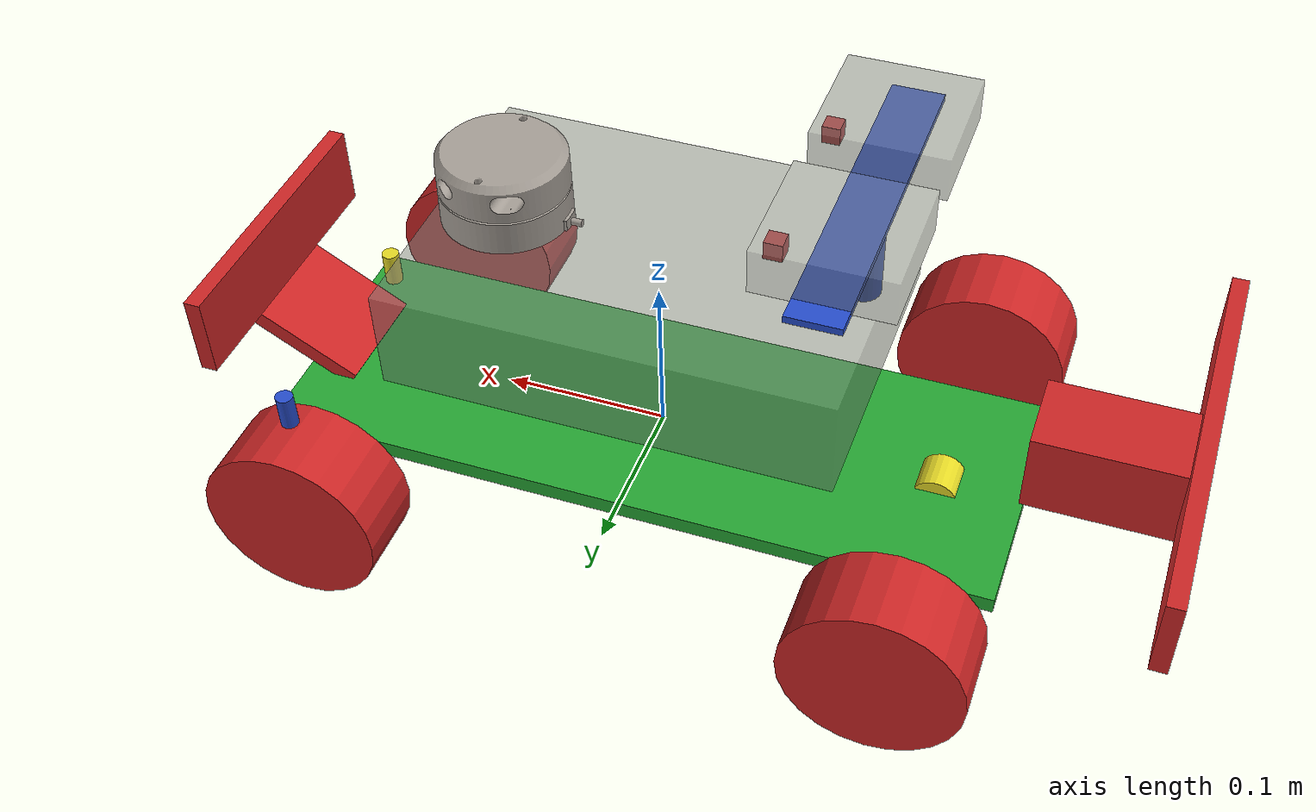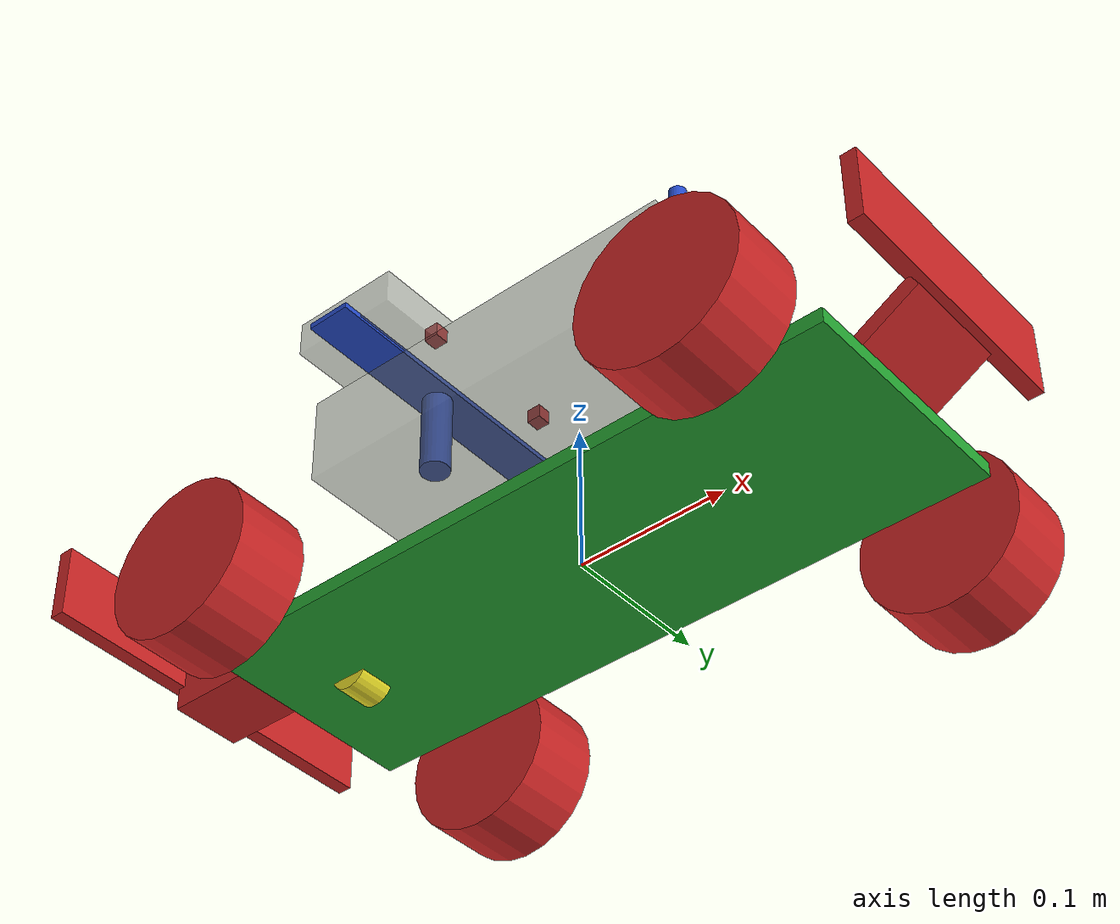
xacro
<?xml version='1.0'?>

<!--Gazebo does not seem to like capital letters in the robot namespace-->
<robot name="scte_bot" xmlns:xacro="http://www.ros.org/wiki/xacro">

    <xacro:arg name="robot_namespace" default="/"/>

    <!-- ackermann components and gazebo plugins -->
    <xacro:include filename="$(find scte_description)/urdf/plugins/scte_plugins.gazebo" />
    <xacro:include filename="$(find scte_description)/urdf/scte_wheel.xacro"/>
    <xacro:include filename="$(find scte_description)/urdf/scte_inertials.xacro"/>

    <!-- sensor gazebo plugins -->
    <xacro:include filename="$(find scte_description)/urdf/plugins/scte_sensors.gazebo" />

    <!-- physical components -->

    <!-- Math constants -->
    <xacro:property name="deg_to_rad" value="0.01745329251994329577"/>

    <!-- Robot base dimensions -->
    <xacro:property name="base_length" value="0.442" /> <!-- wheel base derived from this -->
    <xacro:property name="base_width" value="0.157" /> <!-- wheel track derived from this -->
    <xacro:property name="base_height" value="0.01" />
    <xacro:property name="base_mass" value="5" />

    <!-- Wheel link dimensions -->
    <xacro:property name="wheel_radius" value="0.0525" />
    <xacro:property name="wheel_thickness" value="0.048" />
    <xacro:property name="wheel_mass" value="1" />

    <!-- Steering link dimensions -->
    <xacro:property name="steer_radius" value="0.005" />
    <xacro:property name="steer_thickness" value="0.02" />
    <xacro:property name="steer_mass" value="1" />

    <!-- Axle positions -->
    <xacro:property name="axle_offset" value="0.05" />
    <xacro:property name="steer_offset" value="0.02" />

    <!-- scte dims -->
    <xacro:property name="scte_chassis_length_sq" value="${base_length * base_length}"/>
    <xacro:property name="scte_chassis_width_sq" value="${base_width * base_width}"/>
    <xacro:property name="scte_chassis_height_sq" value="${base_height * base_height}"/>

    <!-- base footprint for nav -->
    <link name='base_footprint'/>

    <joint name="base_link_TO_base_footprint" type="fixed">
        <origin xyz="0 0 0" rpy="0 0 0"/>
        <parent link="base_footprint"/>
        <child link="base_link"/>
    </joint>

    <!-- Base link -->
    <link name="base_link">
        <visual>
            <origin xyz="0 0 0" rpy="0 0 0"/>
            <geometry>
                <box size="${base_length} ${base_width} ${base_height}"/>
            </geometry>
            <material name="green" />
        </visual>
        <collision>
            <origin xyz="0 0 0" rpy="0 0 0"/>
            <geometry>
                <box size="${base_length} ${base_width} ${base_height}"/>
            </geometry>
        </collision>
        <!--xacro:solid_cuboid_inertial
                rpy="0 0 0" xyz="0 0 0"
                mass="${base_mass}"
                x="${base_length}" y="${base_width}" z="${base_height}" /-->
    </link>

    <!-- Inertial link stores the robot's inertial information -->
    <link name="inertial_link">
        <inertial>
            <mass value="${base_mass}" />
            <origin xyz="0 0 0" />
            <inertia ixx="${(1/12 * base_mass) * (scte_chassis_height_sq + scte_chassis_width_sq)}" ixy="0" ixz="0"
                     iyy="${(1/12 * base_mass) * (scte_chassis_height_sq + scte_chassis_length_sq)}" iyz="0"
                     izz="${(1/12 * base_mass) * (scte_chassis_length_sq + scte_chassis_width_sq)}" />
        </inertial>
    </link>

    <joint name="inertial_to_base_link_joint" type="fixed">
        <origin xyz="0 0 0" rpy="0 0 0" />
        <parent link="base_link" />
        <child link="inertial_link" />
    </joint>

    <!-- Front steer and rear wheel joints required for ackermann_steering_controller -->
    <xacro:front_steer
            name="front"
            parent="base"
            steer_radius="${steer_radius}"
            steer_thickness="${steer_thickness}"
            steer_mass="${steer_mass}"
            base_length="${base_length}"
            base_width="${base_width}"
            axle_offset="${axle_offset}"
            steer_height="${wheel_radius+steer_offset}">
    </xacro:front_steer>

    <xacro:rear_wheel
            name="rear"
            parent="base"
            wheel_radius="${wheel_radius/4}"
            wheel_thickness="${wheel_thickness/2}"
            wheel_mass="${wheel_mass/32}">
        <origin xyz="${-base_length/2+axle_offset} 0 0" rpy="${-90 * deg_to_rad} 0 0"/>
    </xacro:rear_wheel>

    <!-- Steerable front wheels -->
    <xacro:front_wheel_lr
            name="front_right"
            parent="base"
            reflect="-1"
            wheel_radius="${wheel_radius}"
            wheel_thickness="${wheel_thickness}"
            wheel_mass="${wheel_mass}"
            steer_radius="${steer_radius}"
            steer_thickness="${steer_thickness}"
            steer_mass="${steer_mass}"
            base_length="${base_length}"
            base_width="${base_width}"
            axle_offset="${axle_offset}"
            steer_height="${wheel_radius+steer_offset}">
    </xacro:front_wheel_lr>
    <xacro:front_wheel_lr
            name="front_left"
            parent="base"
            reflect="1"
            wheel_radius="${wheel_radius}"
            wheel_thickness="${wheel_thickness}"
            wheel_mass="${wheel_mass}"
            steer_radius="${steer_radius}"
            steer_thickness="${steer_thickness}"
            steer_mass="${steer_mass}"
            base_length="${base_length}"
            base_width="${base_width}"
            axle_offset="${axle_offset}"
            steer_height="${wheel_radius+steer_offset}">
    </xacro:front_wheel_lr>

    <!-- Rear wheels -->
    <xacro:rear_wheel_lr
            name="rear_right"
            parent="base"
            wheel_radius="${wheel_radius}"
            wheel_thickness="${wheel_thickness}"
            wheel_mass="${wheel_mass}">
        <origin xyz="${-base_length/2+axle_offset} ${-base_width/2-axle_offset} 0" rpy="${-90 * deg_to_rad} 0 0"/>
    </xacro:rear_wheel_lr>
    <xacro:rear_wheel_lr
            name="rear_left"
            parent="base"
            wheel_radius="${wheel_radius}"
            wheel_thickness="${wheel_thickness}"
            wheel_mass="${wheel_mass}">
        <origin xyz="${-base_length/2+axle_offset} ${+base_width/2+axle_offset} 0" rpy="${-90 * deg_to_rad} 0 0"/>
    </xacro:rear_wheel_lr>

    <!-- Bumpers -->
    <xacro:include filename="$(find scte_description)/urdf/scte_front_bumper.xacro"/>
    <xacro:scte_front_bumper
            link_name="front_bumper"
            parent_link="base_link"
            front_skid_plate_size="0.07 0.07 ${0.0105}"
            front_skid_plate_joint_xyz="${base_length * 0.5} 0 ${0.07 * 0.30}"
            front_skid_plate_joint_rpy="0 ${pi/-6}  0"
            front_bumper_size="0.01 0.175 0.05"
    />

    <xacro:include filename="$(find scte_description)/urdf/scte_rear_bumper.xacro"/>
    <xacro:scte_rear_bumper
            link_name="rear_bumper"
            parent_link="base_link"
            rear_bumper_size="0.01 0.255 0.05"
            rear_bumper_mount_size="0.09 0.05 0.05"
            rear_bumper_mount_joint_xyz="${base_length * -0.6} 0 ${0.105 * 0.5}"
            rear_bumper_mount_joint_rpy="0 0 0"
    />

    <!-- Sensors and Compute Hardware -->
    <xacro:include filename="$(find scte_description)/urdf/equipment/computer_enclosure.xacro"/>
    <xacro:computer_enclosure
            link_name="computer_enclosure"
            parent_link="base_link"
            enclosure_origin="0 0 0.105"
            enclosure_rpy="0 0 0"
    />

    <xacro:include filename="$(find scte_description)/urdf/equipment/camera_rig.xacro"/>
    <xacro:camera_rig
            link_name="camera_rig"
            parent_link="computer_enclosure"
            camera_rig_origin="${0.260 * -0.45} 0 ${0.06 * 1.0}"
            camera_rig_rpy="0 0 0"
    />

    <!-- Sim IMU -->
    <link name="imu_link"/>
    <joint name="imu_link_TO_computer_enclosure" type="fixed">
        <origin xyz="0 0 0" rpy="0 0 0"/>
        <parent link="computer_enclosure"/>
        <child link="imu_link"/>
    </joint>

    <!-- LIDAR -->
    <!--link name="base_laser"/-->
    <xacro:include filename="$(find ydlidar_ros)/urdf/ydlidar.urdf"/>
    <joint name="ydlidar_base_TO_computer_enclosure" type="fixed">
        <origin xyz="0.090 0 0.0305" rpy="0 0 0"/>
        <parent link="computer_enclosure"/>
        <child link="base_laser"/>
    </joint>

    <!-- Cameras -->
    <!--TODO drowan_20210117_BUG: The cameras are mounted sideways. Need to fix camera link and/or optical link...-->
    <xacro:include filename="$(find logitech_c270_camera)/urdf/logitech_c270.xacro"/>
    <xacro:logitech_c270_camera parent_link="camera_rig_bar" camera_link="driver_side_camera" joint_xyz="0.0 0.05 ${0.025 * 0.5}" joint_rpy="0 0 0"/>
    <xacro:logitech_c270_camera parent_link="camera_rig_bar" camera_link="passenger_side_camera" joint_xyz="0.0 -0.05 ${0.025 * 0.5}" joint_rpy="0 0 0"/>

    <!-- Colour -->
    <gazebo reference="base_link">
        <material>Gazebo/Green</material>
    </gazebo>

</robot>

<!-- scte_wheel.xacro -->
<robot xmlns:xacro="http://www.ros.org/wiki/xacro">

    <!-- Properties -->
    <xacro:property name="steer_effort" value="10.0"/>
    <xacro:property name="steer_velocity" value="5.0"/>
    <xacro:property name="steer_limit_deg" value="45.0"/>

    <!-- Bicycle model front steering link (required for steer_drive_controller) -->
    <xacro:macro name="front_steer"
                 params="
                    name
                    parent
                    steer_radius
                    steer_thickness
                    steer_mass
                    base_length
                    base_width
                    axle_offset
                    steer_height">
        <link name="${name}_steer_link">
            <visual>
                <origin xyz="0 0 0" rpy="0 0 0"/>
                <geometry>
                    <cylinder radius="${steer_radius}" length="${steer_thickness}"/>
                </geometry>
                <material name="yellow" />
            </visual>
            <collision>
                <origin xyz="0 0 0" rpy="0 0 0"/>
                <geometry>
                    <cylinder radius="${steer_radius}" length="${steer_thickness}"/>
                </geometry>
            </collision>
            <xacro:solid_cylinder_inertial
                    rpy="0 0 0" xyz="0 0 0"
                    mass="${steer_mass}"
                    radius="${steer_radius}" length="${steer_thickness}" />
        </link>

        <joint name="${name}_steer_joint" type="revolute">
            <parent link="${parent}_link"/>
            <child link="${name}_steer_link"/>
            <origin xyz="${base_length/2-axle_offset} 0 ${steer_height}" rpy="0 0 0"/>
            <axis xyz="0 0 1"/>
            <limit effort="${steer_effort}"
                   lower="${-180.0 * deg_to_rad}" upper="${180.0 * deg_to_rad}"
                   velocity="${steer_velocity}"/>
        </joint>

        <transmission name="${name}_steer_joint_trans">
            <type>transmission_interface/SimpleTransmission</type>
            <actuator name="${name}_steer_joint_motor">
                <mechanicalReduction>1</mechanicalReduction>
                <hardwareInterface>hardware_interface/PositionJointInterface</hardwareInterface>
            </actuator>
            <joint name="${name}_steer_joint">
                <hardwareInterface>hardware_interface/PositionJointInterface</hardwareInterface>
            </joint>
        </transmission>

        <gazebo reference="${name}_steer_link">
            <material>Gazebo/Yellow</material>
        </gazebo>
    </xacro:macro>

    <!-- Car steering model front (steerable) wheel links (left/right) -->
    <xacro:macro name="front_wheel_lr"
                 params="
                    name
                    parent
                    reflect
                    wheel_radius
                    wheel_thickness
                    wheel_mass
                    steer_radius
                    steer_thickness
                    steer_mass
                    base_length
                    base_width
                    axle_offset
                    steer_height">
        <link name="${name}_steer_link">
            <visual>
                <origin xyz="0 0 0" rpy="0 0 0"/>
                <geometry>
                    <cylinder radius="${steer_radius}" length="${steer_thickness}"/>
                </geometry>
                <material name="blue" />
            </visual>
            <collision>
                <origin xyz="0 0 0" rpy="0 0 0"/>
                <geometry>
                    <cylinder radius="${steer_radius}" length="${steer_thickness}"/>
                </geometry>
            </collision>
            <xacro:solid_cylinder_inertial
                    rpy="0 0 0" xyz="0 0 0"
                    mass="${steer_mass}"
                    radius="${steer_radius}" length="${steer_thickness}" />
        </link>

        <joint name="${name}_steer_joint" type="revolute">
            <parent link="${parent}_link"/>
            <child link="${name}_steer_link"/>
            <origin xyz="${base_length/2-axle_offset} ${reflect*(base_width/2+axle_offset)} ${steer_height}" rpy="0 0 0"/>
            <axis xyz="0 0 1"/>
            <limit effort="${steer_effort}"
                   lower="${steer_limit_deg * deg_to_rad * -1.0}" upper="${steer_limit_deg * deg_to_rad}"
                   velocity="${steer_velocity}"/>
        </joint>

        <link name="${name}_wheel_link">
            <visual>
                <origin xyz="0 0 0" rpy="0 0 0"/>
                <geometry>
                    <cylinder radius="${wheel_radius}" length="${wheel_thickness}"/>
                </geometry>
                <material name="red" />
            </visual>
            <collision>
                <origin xyz="0 0 0" rpy="0 0 0"/>
                <geometry>
                    <cylinder radius="${wheel_radius}" length="${wheel_thickness}"/>
                </geometry>
            </collision>
            <xacro:solid_cylinder_inertial
                    rpy="0 0 0" xyz="0 0 0"
                    mass="${wheel_mass}"
                    radius="${wheel_radius}" length="${wheel_thickness}" />
        </link>

        <joint name="${name}_wheel_joint" type="continuous">
            <parent link="${name}_steer_link"/>
            <child link="${name}_wheel_link"/>
            <origin xyz="0 0 ${-steer_height}" rpy="${-90 * deg_to_rad} 0 0"/>
            <axis xyz="0 0 1"/>
        </joint>

        <transmission name="${name}_steer_joint_trans">
            <type>transmission_interface/SimpleTransmission</type>
            <actuator name="${name}_steer_joint_motor">
                <mechanicalReduction>1</mechanicalReduction>
                <hardwareInterface>hardware_interface/PositionJointInterface</hardwareInterface>
            </actuator>
            <joint name="${name}_steer_joint">
                <hardwareInterface>hardware_interface/PositionJointInterface</hardwareInterface>
            </joint>
        </transmission>

        <transmission name="${name}_wheel_joint_trans">
            <type>transmission_interface/SimpleTransmission</type>
            <actuator name="${name}_wheel_joint_motor">
                <mechanicalReduction>1</mechanicalReduction>
                <hardwareInterface>hardware_interface/VelocityJointInterface</hardwareInterface>
            </actuator>
            <joint name="${name}_wheel_joint">
                <hardwareInterface>hardware_interface/VelocityJointInterface</hardwareInterface>
            </joint>
        </transmission>

        <gazebo reference="${name}_steer_link">
            <material>Gazebo/Blue</material>
        </gazebo>

        <gazebo reference="${name}_wheel_link">
            <material>Gazebo/Red</material>
        </gazebo>
    </xacro:macro>

    <!-- Bicycle model rear wheel link (required for steer_drive_controller) -->
    <xacro:macro name="rear_wheel"
                 params="
      name
      parent
      wheel_radius
      wheel_thickness
      wheel_mass
      *origin">
        <link name="${name}_wheel_link">
            <visual>
                <origin xyz="0 0 0" rpy="0 0 0"/>
                <geometry>
                    <cylinder radius="${wheel_radius}" length="${wheel_thickness}"/>
                </geometry>
                <material name="yellow" />
            </visual>
            <collision>
                <origin xyz="0 0 0" rpy="0 0 0"/>
                <geometry>
                    <cylinder radius="${wheel_radius}" length="${wheel_thickness}"/>
                </geometry>
            </collision>
            <xacro:solid_cylinder_inertial
                    rpy="0 0 0" xyz="0 0 0"
                    mass="${wheel_mass}"
                    radius="${wheel_radius}" length="${wheel_thickness}" />
        </link>

        <joint name="${name}_wheel_joint" type="continuous">
            <parent link="${parent}_link"/>
            <child link="${name}_wheel_link"/>
            <xacro:insert_block name="origin"/>
            <axis xyz="0 0 1"/>
        </joint>

        <transmission name="${name}_wheel_joint_trans">
            <type>transmission_interface/SimpleTransmission</type>
            <actuator name="${name}_wheel_joint_motor">
                <mechanicalReduction>1</mechanicalReduction>
                <hardwareInterface>hardware_interface/VelocityJointInterface</hardwareInterface>
            </actuator>
            <joint name="${name}_wheel_joint">
                <hardwareInterface>hardware_interface/VelocityJointInterface</hardwareInterface>
            </joint>
        </transmission>

        <gazebo reference="${name}_wheel_link">
            <material>Gazebo/Yellow</material>
        </gazebo>
    </xacro:macro>

    <!-- Bicycle model front wheel link (passive - no transmission) -->
    <xacro:macro name="front_wheel"
                 params="
      name
      parent
      wheel_radius
      wheel_thickness
      wheel_mass
      *origin">
        <link name="${name}_wheel_link">
            <visual>
                <origin xyz="0 0 0" rpy="0 0 0"/>
                <geometry>
                    <cylinder radius="${wheel_radius}" length="${wheel_thickness}"/>
                </geometry>
                <material name="yellow" />
            </visual>
            <collision>
                <origin xyz="0 0 0" rpy="0 0 0"/>
                <geometry>
                    <cylinder radius="${wheel_radius}" length="${wheel_thickness}"/>
                </geometry>
            </collision>
            <xacro:solid_cylinder_inertial
                    rpy="0 0 0" xyz="0 0 0"
                    mass="${wheel_mass}"
                    radius="${wheel_radius}" length="${wheel_thickness}" />
        </link>

        <joint name="${name}_wheel_joint" type="continuous">
            <parent link="${parent}_link"/>
            <child link="${name}_wheel_link"/>
            <xacro:insert_block name="origin"/>
            <axis xyz="0 0 1"/>
        </joint>

        <gazebo reference="${name}_wheel_link">
            <material>Gazebo/Yellow</material>
        </gazebo>

        <gazebo reference="${name}_wheel_joint">
            <provideFeedback>true</provideFeedback>
        </gazebo>
    </xacro:macro>

    <!-- Car steering model rear wheel links (left/right) -->
    <xacro:macro name="rear_wheel_lr"
                 params="
      name
      parent
      wheel_radius
      wheel_thickness
      wheel_mass
      *origin">
        <link name="${name}_wheel_link">
            <visual>
                <origin xyz="0 0 0" rpy="0 0 0"/>
                <geometry>
                    <cylinder radius="${wheel_radius}" length="${wheel_thickness}"/>
                </geometry>
                <material name="red" />
            </visual>
            <collision>
                <origin xyz="0 0 0" rpy="0 0 0"/>
                <geometry>
                    <cylinder radius="${wheel_radius}" length="${wheel_thickness}"/>
                </geometry>
            </collision>
            <xacro:solid_cylinder_inertial
                    rpy="0 0 0" xyz="0 0 0"
                    mass="${wheel_mass}"
                    radius="${wheel_radius}" length="${wheel_thickness}" />
        </link>

        <joint name="${name}_wheel_joint" type="continuous">
            <parent link="${parent}_link"/>
            <child link="${name}_wheel_link"/>
            <xacro:insert_block name="origin"/>
            <axis xyz="0 0 1"/>
        </joint>

        <transmission name="${name}_wheel_joint_trans">
            <type>transmission_interface/SimpleTransmission</type>
            <actuator name="${name}_wheel_joint_motor">
                <mechanicalReduction>1</mechanicalReduction>
                <hardwareInterface>hardware_interface/VelocityJointInterface</hardwareInterface>
            </actuator>
            <joint name="${name}_wheel_joint">
                <hardwareInterface>hardware_interface/VelocityJointInterface</hardwareInterface>
            </joint>
        </transmission>

        <gazebo reference="${name}_wheel_link">
            <material>Gazebo/Red</material>
        </gazebo>
    </xacro:macro>

</robot>

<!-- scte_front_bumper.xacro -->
<robot name="sctebot" xmlns:xacro="http://www.ros.org/wiki/xacro">

    <xacro:macro name="scte_front_bumper" params="link_name parent_link
front_skid_plate_size
front_skid_plate_joint_xyz
front_skid_plate_joint_rpy
front_bumper_size
">

        <!--front skid plate-->
        <link name="${link_name}_skid_plate">
            <visual>
                <geometry>
                    <box size="${front_skid_plate_size}"/>
                </geometry>
                <material name="red"/>
            </visual>
            <collision>
                <geometry>
                    <box size="${front_skid_plate_size}"/>
                </geometry>
            </collision>
        </link>
        <joint name="${link_name}_skid_plate_TO_${parent_link}" type="fixed">
            <origin xyz="${front_skid_plate_joint_xyz}" rpy="${front_skid_plate_joint_rpy}"/>
            <parent link="${parent_link}"/>
            <child link="${link_name}_skid_plate"/>
        </joint>

        <link name="${link_name}">
            <visual>
                <geometry>
                    <box size="${front_bumper_size}"/>
                </geometry>
                <material name="red"/>
            </visual>
            <collision>
                <geometry>
                    <box size="${front_bumper_size}"/>
                </geometry>
            </collision>
        </link>
        <joint name="${link_name}_TO_${parent_link}" type="fixed">
            <origin xyz="${0.07 * 0.70} 0 ${0.07 * 0.35}" rpy="0 ${pi/6} 0"/>
            <parent link="${link_name}_skid_plate"/>
            <child link="${link_name}"/>
        </joint>
    </xacro:macro>

</robot>

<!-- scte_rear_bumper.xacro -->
<robot name="sctebot" xmlns:xacro="http://www.ros.org/wiki/xacro">

    <xacro:macro name="scte_rear_bumper" params="link_name parent_link
rear_bumper_size
rear_bumper_mount_size
rear_bumper_mount_joint_xyz
rear_bumper_mount_joint_rpy">

        <!--rear bumper assembly-->
        <link name="${link_name}_mount">
            <visual>
                <geometry>
                    <box size="${rear_bumper_mount_size}"/>
                </geometry>
                <material name="red"/>
            </visual>
            <collision>
                <geometry>
                    <box size="${rear_bumper_mount_size}"/>
                </geometry>
            </collision>
        </link>
        <joint name="${link_name}_TO_${parent_link}" type="fixed">
            <origin xyz="${rear_bumper_mount_joint_xyz}" rpy="${rear_bumper_mount_joint_rpy}"/>
            <parent link="${parent_link}"/>
            <child link="${link_name}_mount"/>
        </joint>

        <link name="${link_name}">
            <visual>
                <geometry>
                    <box size="${rear_bumper_size}"/>
                </geometry>
                <material name="red"/>
            </visual>
            <collision>
                <geometry>
                    <box size="${rear_bumper_size}"/>
                </geometry>
            </collision>
        </link>
        <joint name="${link_name}_TO_${link_name}_mount" type="fixed">
            <origin xyz="${0.09 * -0.5} 0 0.015" rpy="0 0 0"/>
            <parent link="${link_name}_mount"/>
            <child link="${link_name}"/>
        </joint>
    </xacro:macro>

</robot>

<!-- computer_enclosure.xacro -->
<robot name="sctebot" xmlns:xacro="http://www.ros.org/wiki/xacro">

    <xacro:macro name="computer_enclosure" params="link_name parent_link
    enclosure_origin
    enclosure_rpy
    ">

        <link name="${link_name}">
            <inertial>
                <mass value="${scte_chassis_mass * 0.02}"/>
                <origin xyz="0 0 0" rpy="0 0 0"/>
                <inertia
                        ixx="1" ixy="0" ixz="0"
                        iyy="1" iyz="0"
                        izz="1"
                />
            </inertial>
            <visual name='visual'>
                <origin xyz="0 0 0" rpy="0 0 0"/>
                <geometry>
                    <box size="0.26 0.185 0.06"/>
                </geometry>
                <material name="none">
                    <color rgba="${122/255} ${125/255} ${121/255} 0.5"/>
                </material>
            </visual>
            <collision name='collision'>
                <origin xyz="0 0 0" rpy="0 0 0"/>
                <geometry>
                    <box size="0.26 0.185 0.06"/>
                </geometry>
            </collision>
        </link>
        <joint name="${link_name}_TO_${parent_link}" type="fixed">
            <origin xyz="${enclosure_origin}" rpy="${enclosure_rpy}"/>
            <parent link="${parent_link}"/>
            <child link="${link_name}"/>
        </joint>

    </xacro:macro>

</robot>

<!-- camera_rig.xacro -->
<robot name="sctebot" xmlns:xacro="http://www.ros.org/wiki/xacro">

    <xacro:macro name="camera_rig" params="link_name parent_link
    camera_rig_origin
    camera_rig_rpy
    ">

        <link name="${link_name}_support">
            <inertial>
                <mass value="${scte_chassis_mass * 0.01}"/>
                <origin xyz="0 0 0" rpy="0 0 0"/>
                <inertia
                        ixx="1" ixy="0" ixz="0"
                        iyy="1" iyz="0"
                        izz="1"
                />
            </inertial>
            <visual name='visual'>
                <origin xyz="0 0 0" rpy="0 0 0"/>
                <geometry>
                    <cylinder radius="0.01" length="0.06"/>
                </geometry>
                <material name="blue"/>
            </visual>
            <collision name='collision'>
                <origin xyz="0 0 0" rpy="0 0 0"/>
                <geometry>
                    <cylinder radius="0.01" length="0.06"/>
                </geometry>
            </collision>
        </link>
        <joint name="${link_name}_support_TO_${parent_link}" type="fixed">
            <origin xyz="${camera_rig_origin}" rpy="${camera_rig_rpy}"/>
            <parent link="${parent_link}"/>
            <child link="${link_name}_support"/>
        </joint>

        <link name="${link_name}_bar">
            <inertial>
                <mass value="${scte_chassis_mass * 0.01}"/>
                <origin xyz="0 0 0" rpy="0 0 0"/>
                <inertia
                        ixx="1" ixy="0" ixz="0"
                        iyy="1" iyz="0"
                        izz="1"
                />
            </inertial>
            <visual name='visual'>
                <origin xyz="0 0 0" rpy="0 0 0"/>
                <geometry>
                    <box size="0.03 0.202 0.004"/>
                </geometry>
                <material name="blue"/>
            </visual>
            <collision name='collision'>
                <origin xyz="0 0 0" rpy="0 0 0"/>
                <geometry>
                    <box size="0.03 0.202 0.004"/>
                </geometry>
            </collision>
        </link>
        <joint name="${link_name}_bar_TO_${link_name}_support" type="fixed">
            <origin xyz="0 0 ${0.06 * 0.5}" rpy="0 0 0"/>
            <parent link="${link_name}_support"/>
            <child link="${link_name}_bar"/>
        </joint>

    </xacro:macro>
</robot>

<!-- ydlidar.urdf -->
<robot
  name="ydlidar_ros">
  <link
    name="base_laser">
    <inertial>
      <origin
        xyz="-0.00029774 0.0066667 0.00013047"
        rpy="0 0 0" />
      <mass
        value="0.15717" />
      <inertia
        ixx="6.7885E-05"
        ixy="-1.3987E-07"
        ixz="-8.1554E-07"
        iyy="0.00013173"
        iyz="-9.0932E-08"
        izz="7.1972E-05" />
    </inertial>
    <visual>
      <origin
        xyz="0 0 0"
        rpy="0 0 0" />
      <geometry>
        <mesh
          filename="package://ydlidar_ros/meshes/ydlidar.dae" />
      </geometry>
      <material
        name="">
        <color
          rgba="0.64706 0.61961 0.58824 1" />
      </material>
    </visual>
    <collision>
      <origin
        xyz="0 0 0"
        rpy="0 0 0" />
      <geometry>
        <mesh
          filename="package://ydlidar_ros/meshes/ydlidar.dae" />
      </geometry>
    </collision>
  </link>
  <link
    name="laser_frame">
    <inertial>
      <origin
        xyz="-0.00036659 0.00064155 -0.00027052"
        rpy="0 0 0" />
      <mass
        value="0.25482" />
      <inertia
        ixx="8.9194E-05"
        ixy="1.8116E-07"
        ixz="3.6435E-08"
        iyy="0.00018279"
        iyz="2.423E-07"
        izz="0.00011103" />
    </inertial>
  </link>
  <joint
    name="laser_joint"
    type="fixed">
    <origin
      xyz="0 0 0.03172"
      rpy="0 0 0" />
    <parent
      link="base_laser" />
    <child
      link="laser_frame" />
    <axis
      xyz="0 0 0" />
  </joint>
</robot>

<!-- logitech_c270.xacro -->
<robot name="logitech_270_camera" xmlns:xacro="http://www.ros.org/wiki/xacro">

    <xacro:property name="M_PI" value="3.14159265358979323846264338327950288"/>

    <!--https://answers.ros.org/question/331432/pass-parameters-of-xacro-file-in-another-xacro-file/-->
    <xacro:macro name="logitech_c270_camera" params="parent_link camera_link joint_xyz joint_rpy">
        <link name='${camera_link}'>
            <inertial>
                <mass value="1.0"/>
                <origin xyz="0 0 0" rpy="0 0 0"/>
                <inertia
                        ixx="1" ixy="0" ixz="0"
                        iyy="1" iyz="0"
                        izz="1"
                />
            </inertial>
            <visual name='visual'>
                <transparency>1</transparency>
                <origin xyz="0 0 0" rpy="0 0 0"/>
                <geometry>
                    <box size="0.075 0.075 0.025"/>
                </geometry>
                <material name="none">
                    <color rgba="${122/255} ${125/255} ${121/255} 0.5"/>
                </material>
            </visual>
            <collision name='collision'>
                <origin xyz="0 0 0" rpy="0 0 0"/>
                <geometry>
                    <box size="0.075 0.075 0.025"/>
                </geometry>
            </collision>
        </link>

        <joint name="${camera_link}_base_JOINT_${parent_link}_link" type="fixed">
            <origin xyz="${joint_xyz}" rpy="${joint_rpy}"/>
            <parent link="${parent_link}"/>
            <child link="${camera_link}"/>
        </joint>

        <link name="${camera_link}_optical">
            <visual name='visual'>
                <origin xyz="0 0 0" rpy="0 0 0"/>
                <geometry>
                    <box size="0.01 0.01 0.01"/>
                </geometry>
                <material name="red"/>
            </visual>
            <collision name='collision'>
                <origin xyz="0 0 0" rpy="0 0 0"/>
                <geometry>
                    <box size="0.01 0.01 0.01"/>
                </geometry>
            </collision>
        </link>
        <joint name="${camera_link}_base_optical_JOINT_${camera_link}_link" type="fixed">
            <origin xyz="0.03 0.015 0" rpy="${M_PI/-2} 0 ${M_PI/-2}"/>
            <parent link="${camera_link}"/>
            <child link="${camera_link}_optical"/>
        </joint>
    </xacro:macro>
</robot>
